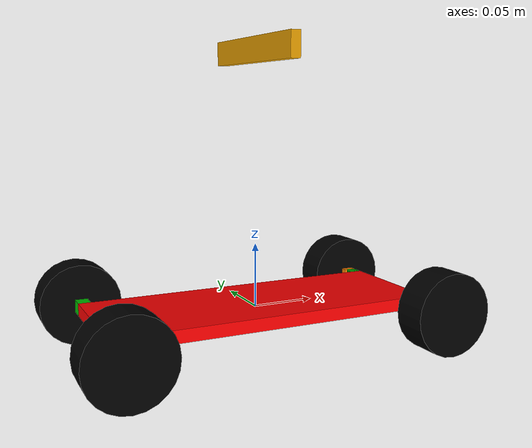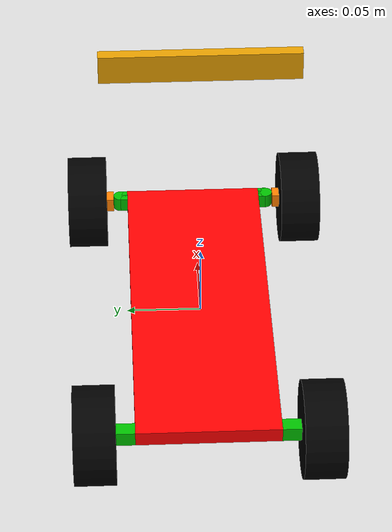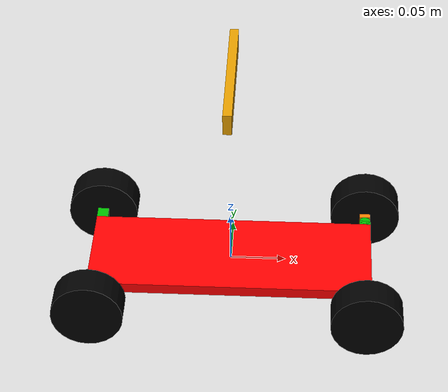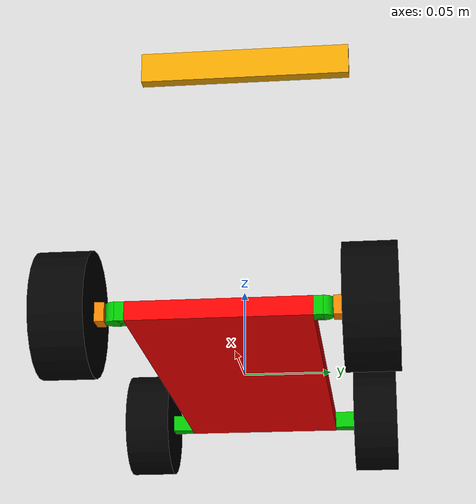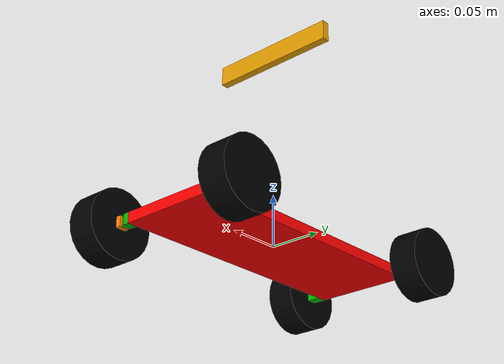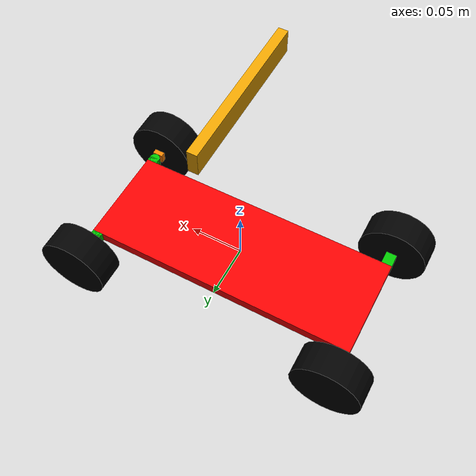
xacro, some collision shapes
<?xml version="1.0"?>

<robot xmlns:xacro="http://ros.org/wiki/xacro" name="simple_ackermann" >

	<xacro:property name="height" value="0.01" />
	<xacro:property name="wheelbase" value="0.26" />
	<xacro:property name="track" value="0.1525" />
	<xacro:property name="wheeldiameter" value="0.065" />
	<!--xacro:property name="wheelwidth" value="0.001" /-->
	<xacro:property name="wheelwidth" value="0.0275" />

	<xacro:property name="ackermann_x_offset" value="-0.095" />
	<xacro:property name="ackermann_z_offset" value="-0.03" />

	<xacro:include filename="$(find realsense_gazebo_plugin)/models/eugen/xacro/simple_ackermann_rear_wheel.xacro"/>
	<xacro:include filename="$(find realsense_gazebo_plugin)/models/eugen/xacro/simple_ackermann_front_wheel.xacro"/>
	<xacro:include filename="$(find realsense_gazebo_plugin)/models/eugen/xacro/simple_ackermann_plugin.xacro"/>
	<xacro:include filename="$(find realsense_gazebo_plugin)/models/realsense_camera_ros/realsense.xacro"/>

	<xacro:macro name="box_inertial" params="x y z mass">
		<inertial>
			<mass value="${mass}" />
			<origin xyz="0 0 0" />
			<inertia
				ixx="${0.0833333 * mass * (y*y + z*z)}" ixy="0.0" ixz="0.0"
				iyy="${0.0833333 * mass * (x*x + z*z)}" iyz="0.0"
				izz="${0.0833333 * mass * (x*x + y*y)}" />
		</inertial>
	</xacro:macro>

	<link name="base_link">
		<visual name="chassis_visual">
			<origin xyz="0.0 0.0 0.0" rpy="0.0 0.0 0.0"/>
			<geometry name="base_link_geomety">
				<box size="${wheelbase} ${track-wheelwidth-(3*height)} ${height}"/>
			</geometry>
			<material name="red">
				<color rgba="1.0 0.0 0.0 1.0"/>
			</material>
		</visual>
		<collision>
			<origin xyz="0.0 0.0 0.0" rpy="0.0 0.0 0.0"/>
			<geometry name="base_link_geomety">
				<box size="${wheelbase} ${track-wheelwidth-(3*height)} ${height}"/>
			</geometry>
		</collision>
		<xacro:box_inertial x="${wheelbase}" y="${track-wheelwidth-(3*height)}" z="${height}" mass="1.0" />
	</link>
	<gazebo reference="base_link">
		<material value="Gazebo/Red"/>
	</gazebo>

	<xacro:rear_wheel side="left" reflect="1.0" height="${height}" wheelbase="${wheelbase}" track="${track}" wheeldiameter="${wheeldiameter}" wheelwidth="${wheelwidth}"/>
	<xacro:rear_wheel side="right" reflect="-1.0" height="${height}" wheelbase="${wheelbase}" track="${track}" wheeldiameter="${wheeldiameter}" wheelwidth="${wheelwidth}"/>
	<xacro:front_wheel side="left" reflect="1.0" height="${height}" wheelbase="${wheelbase}" track="${track}" wheeldiameter="${wheeldiameter}" wheelwidth="${wheelwidth}"/>
	<xacro:front_wheel side="right" reflect="-1.0" height="${height}" wheelbase="${wheelbase}" track="${track}" wheeldiameter="${wheeldiameter}" wheelwidth="${wheelwidth}"/>

	<xacro:ackermanndrive_plugin/>

</robot>

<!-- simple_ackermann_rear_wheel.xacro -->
<robot xmlns:xacro="http://ros.org/wiki/xacro" name="simple_ackermann" >

	<xacro:macro name="default_inertial" params="mass">
		<inertial>
			<mass value="${mass}" />
			<inertia ixx="1.0" ixy="0.0" ixz="0.0" iyy="1.0" iyz="0.0" izz="1.0" />
		</inertial>
	</xacro:macro>

	<xacro:macro name="cylinder_inertial" params="radius length mass">
		<inertial>
			<mass value="${mass}" />
			<origin xyz="0 0 0" />
			<inertia
				ixx="${0.0833333 * mass * (3 * radius * radius + length * length)}" ixy="0.0" ixz="0.0"
				iyy="${0.0833333 * mass * (3 * radius * radius + length * length)}" iyz="0.0"
				izz="${0.5 * mass * radius * radius}" />
		</inertial>
	</xacro:macro>

	<xacro:macro name="cylinder_inertial_wheels" params="radius length mass">
		<inertial>
			<mass value="${mass}" />
			<origin xyz="0.0 ${reflect*wheelwidth/2} 0.0" rpy="${pi/2} 0.0 0.0"/>
			<inertia
				ixx="${0.0833333 * mass * (3 * radius * radius + length * length)}" ixy="0.0" ixz="0.0"
				iyy="${0.0833333 * mass * (3 * radius * radius + length * length)}" iyz="0.0"
				izz="${0.5 * mass * radius * radius}" />
		</inertial>
	</xacro:macro>

	<xacro:macro name="box_inertial" params="x y z mass">
		<inertial>
			<mass value="${mass}" />
			<origin xyz="0 0 0" />
			<inertia
				ixx="${0.0833333 * mass * (y*y + z*z)}" ixy="0.0" ixz="0.0"
				iyy="${0.0833333 * mass * (x*x + z*z)}" iyz="0.0"
				izz="${0.0833333 * mass * (x*x + y*y)}" />
		</inertial>
	</xacro:macro>

	<xacro:macro name="rear_wheel" params="side reflect height wheelbase track wheeldiameter wheelwidth">

		<joint name="base_link_to_${side}_rear_wheelmount" type="fixed">
			<origin xyz="${-(wheelbase/2-height/2)} ${reflect*(track-wheelwidth-3*height/2)/2} 0.0" rpy="0.0 0.0 0.0"/>
			<parent link="base_link"/>
			<child link="${side}_rear_wheelmount"/>
		</joint>

		<link name="${side}_rear_wheelmount">
			<visual>
				<origin xyz="0.0 0.0 0.0" rpy="0.0 0.0 0.0"/>
				<geometry name="wheelmount_geometry">
					<box size="${height} ${3*height/2} ${height}" />
				</geometry>
				<material name="green">
					<color rgba="0.0 0.75 0.0 1.0"/>
				</material>
			</visual>
			<collision>
				<origin xyz="0.0 0.0 0.0" rpy="0.0 0.0 0.0"/>
				<geometry name="wheelmount_geometry">
					<box size="${height} ${3*height/2} ${height}" />
				</geometry>
			</collision>
		<xacro:box_inertial x="${height}" y="${3*height/2}" z ="${height}" mass="0.015"/>
		</link>
		<gazebo reference="${side}_rear_wheelmount">
			<material value="Gazebo/Red"/>
		</gazebo>

		<joint name="${side}_rear_wheel_to_mount" type="continuous">
			<axis xyz="0.0 1.0 0.0"/>
			<origin xyz="0.0 ${reflect*height/2} 0.0" rpy="0.0 0.0 0.0"/>
			<parent link="${side}_rear_wheelmount"/>
			<child link="${side}_rear_wheel"/>
		</joint>

		<link name="${side}_rear_wheel">
			<visual>
				<origin xyz="0.0 ${reflect*wheelwidth/2} 0.0" rpy="${pi/2} 0.0 0.0"/>
				<geometry name="wheel_geom">
					<cylinder radius="${wheeldiameter/2}" length="${wheelwidth}" />
				</geometry>
				<material name="black">
					<color rgba="0.0 0.0 0.0 1.0"/>
				</material>
			</visual>
			<collision>
				<origin xyz="0.0 ${reflect*wheelwidth/2} 0.0" rpy="${pi/2} 0.0 0.0"/>
				<geometry name="wheel_geom">
					<cylinder radius="${wheeldiameter/2}" length="${wheelwidth}" />
				</geometry>
			</collision>
			<xacro:cylinder_inertial_wheels radius="${wheeldiameter/2}" length="${wheelwidth}" mass="0.01"/>
		</link>
		<gazebo reference="${side}_rear_wheel">
			<mu1>10.0</mu1>
			<mu2>10.0</mu2>
			<kp>1000000.0</kp>
			<kd>10.0</kd>
			<material value="Gazebo/Black"/>
		</gazebo>
	</xacro:macro>

</robot>

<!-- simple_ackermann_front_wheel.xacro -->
<robot xmlns:xacro="http://ros.org/wiki/xacro">

	<xacro:macro name="default_inertial" params="mass">
		<inertial>
			<mass value="${mass}" />
			<inertia ixx="0.001" ixy="0.0" ixz="0.0" iyy="0.001" iyz="0.0" izz="0.001" />
		</inertial>
	</xacro:macro>

	<xacro:macro name="cylinder_inertial" params="radius length mass">
		<inertial>
			<mass value="${mass}" />
			<origin xyz="0.0 0.0 0.0" rpy="0.0 0.0 0.0"/>
			<inertia
				ixx="${0.0833333 * mass * (3 * radius * radius + length * length)}" ixy="0.0" ixz="0.0"
				iyy="${0.0833333 * mass * (3 * radius * radius + length * length)}" iyz="0.0"
				izz="${0.5 * mass * radius * radius}" />
		</inertial>
	</xacro:macro>

	<xacro:macro name="cylinder_inertial_wheels" params="radius length mass">
		<inertial>
			<mass value="${mass}" />
			<origin xyz="0.0 ${reflect*wheelwidth/2} 0.0" rpy="${pi/2} 0.0 0.0"/>
			<inertia
				ixx="${0.0833333 * mass * (3 * radius * radius + length * length)}" ixy="0.0" ixz="0.0"
				iyy="${0.0833333 * mass * (3 * radius * radius + length * length)}" iyz="0.0"
				izz="${0.5 * mass * radius * radius}" />
		</inertial>
	</xacro:macro>

	<xacro:macro name="box_inertial" params="x y z mass">
		<inertial>
			<mass value="${mass}" />
			<origin xyz="0 0 0" />
			<inertia
				ixx="${0.0833333 * mass * (y*y + z*z)}" ixy="0.0" ixz="0.0"
				iyy="${0.0833333 * mass * (x*x + z*z)}" iyz="0.0"
				izz="${0.0833333 * mass * (x*x + y*y)}" />
		</inertial>
	</xacro:macro>

	<xacro:macro name="box_inertial_kingpin" params="x y z mass">
		<inertial>
			<mass value="${mass}" />
			<origin xyz="0.0 ${reflect*3*height/4} 0.0" rpy="0.0 0.0 0.0"/>
			<inertia
				ixx="${0.0833333 * mass * (y*y + z*z)}" ixy="0.0" ixz="0.0"
				iyy="${0.0833333 * mass * (x*x + z*z)}" iyz="0.0"
				izz="${0.0833333 * mass * (x*x + y*y)}" />
		</inertial>
	</xacro:macro>

	<xacro:macro name="cylinder_inertial_with_origin" params="radius length mass *origin">
		<inertial>
			<mass value="${mass}" />
			<xacro:insert_block name="origin" />
			<inertia
				ixx="${0.0833333 * mass * (3 * radius * radius + length * length)}" ixy="0.0" ixz="0.0"
				iyy="${0.0833333 * mass * (3 * radius * radius + length * length)}" iyz="0.0"
				izz="${0.5 * mass * radius * radius}" />
		</inertial>
	</xacro:macro>

	<xacro:macro name="box_inertial_with_origin" params="x y z mass *origin">
		<inertial>
			<mass value="${mass}" />
			<xacro:insert_block name="origin" />
			<inertia
				ixx="${0.0833333 * mass * (y*y + z*z)}" ixy="0.0" ixz="0.0"
				iyy="${0.0833333 * mass * (x*x + z*z)}" iyz="0.0"
				izz="${0.0833333 * mass * (x*x + y*y)}" />
		</inertial>
	</xacro:macro>

	<xacro:macro name="front_wheel" params="side reflect height wheelbase track wheeldiameter wheelwidth">

		<joint name="base_link_to_${side}_front_wheelmount_box" type="fixed">
			<origin xyz="${(wheelbase/2-height/2)} ${reflect*(track-wheelwidth-5*height/2)/2} 0.0" rpy="0.0 0.0 0.0"/>
			<parent link="base_link"/>
			<child link="${side}_front_wheelmount_box"/>
		</joint>

		<link name="${side}_front_wheelmount_box">
			<visual>
				<origin xyz="0.0 0.0 0.0" rpy="0.0 0.0 0.0"/>
				<geometry name="wheelmount_geometry">
					<box size="${height} ${height/2} ${height}" />
				</geometry>
				<material name="green">
					<color rgba="0.0 0.75 0.0 1.0"/>
				</material>
			</visual>
			<collision>
				<origin xyz="0.0 0.0 0.0" rpy="0.0 0.0 0.0"/>
				<geometry name="wheelmount_geometry">
					<box size="${height} ${height/2} ${height}" />
				</geometry>
			</collision>
			<xacro:box_inertial x="${height}" y="${height/2}" z="${height}" mass="0.005"/>
		</link>
		<gazebo reference="${side}_front_wheelmount_box">
			<material value="Gazebo/Red"/>
		</gazebo>

		<joint name="${side}_front_wheelmount_box_to_${side}_front_wheelmount_cylinder" type="fixed">
			<origin xyz="0.0 ${reflect*height/4} 0.0" rpy="0.0 0.0 0.0"/>
			<parent link="${side}_front_wheelmount_box"/>
			<child link="${side}_front_wheelmount_cylinder"/>
		</joint>

		<link name="${side}_front_wheelmount_cylinder">
			<visual>
				<origin xyz="0.0 0.0 0.0" rpy="0.0 0.0 0.0"/>
				<geometry name="wheelmount_geometry">
					<cylinder radius="${height/2}" length="${height}" />
				</geometry>
				<material name="green">
					<color rgba="0.0 0.75 0.0 1.0"/>
				</material>
			</visual>
			<collision>
				<origin xyz="0.0 0.0 0.0" rpy="0.0 0.0 0.0"/>
				<geometry name="wheelmount_geometry">
					<cylinder radius="${height/2}" length="${height}" />
				</geometry>
			</collision>
			<xacro:cylinder_inertial radius="${height/2}" length="${height}" mass="0.005"/>
		</link>
		<gazebo reference="${side}_front_wheelmount_cylinder">
			<material value="Gazebo/Red"/>
		</gazebo>

		<joint name="${side}_front_wheelmount_cylinder_to_${side}_kingpin" type="revolute">
		  	<axis xyz="0.0 0.0 1.0"/>
		  	<origin rpy="0.0 0.0 0.0" xyz="0.0 0.0 0.0"/>
			<parent link="${side}_front_wheelmount_cylinder"/>
			<child link="${side}_kingpin"/>
			<limit lower="-0.41" upper="0.41" effort="100" velocity="100"/>
			<joint_properties damping="1.0" friction="0.0"/>
		</joint>
		<gazebo reference="${side}_front_wheelmount_cylinder_to_${side}_kingpin">
		</gazebo>

		<link name="${side}_kingpin">
			<visual>
				<origin xyz="0.0 ${reflect*3*height/4} 0.0" rpy="0.0 0.0 0.0"/>
				<geometry name="kingpin_geometry">
					<box size="${height} ${height/2} ${height}" />
				</geometry>
				<material name="orange">
					<color rgba="1.0 0.5 0.0 1.0"/>
				</material>
			</visual>
			<collision>
				<origin xyz="0.0 ${reflect*3*height/4} 0.0" rpy="0.0 0.0 0.0"/>
				<geometry name="kingpin_geometry">
					<box size="${height} ${height/2} ${height}" />
				</geometry>
			</collision>
			<xacro:box_inertial_kingpin x="${height}" y="${height/2}" z="${height}" mass="0.005"/>
		</link>
		<gazebo reference="${side}_kingpin">
			<material value="Gazebo/Orange"/>
		</gazebo>

		<joint name="${side}_kingpin_to_${side}_front_wheel" type="continuous">
			<axis xyz="0.0 1.0 0.0"/>
			<origin xyz="0.0 ${reflect*height} 0.0" rpy="0.0 0.0 0.0"/>
			<parent link="${side}_kingpin"/>
			<child link="${side}_front_wheel"/>
		</joint>

		<link name="${side}_front_wheel">
			<visual>
				<origin xyz="0.0 ${reflect*wheelwidth/2} 0.0" rpy="${pi/2} 0.0 0.0"/>
				<geometry name="wheel_geom">
					<cylinder radius="${wheeldiameter/2}" length="${wheelwidth}" />
				</geometry>
				<material name="black">
					<color rgba="0.0 0.0 0.0 1.0"/>
				</material>
			</visual>
			<collision>
				<origin xyz="0.0 ${reflect*wheelwidth/2} 0.0" rpy="${pi/2} 0.0 0.0"/>
				<geometry name="wheel_geom">
					<cylinder radius="${wheeldiameter/2}" length="${wheelwidth}" />
				</geometry>
			</collision>
			<xacro:cylinder_inertial_wheels radius="${wheeldiameter/2}" length="${wheelwidth}" mass="0.01"/>
		</link>
		<gazebo reference="${side}_front_wheel">
			<mu1>10.0</mu1>		<!-- friction coeffciant 1 -->
			<mu2>10.0</mu2>		<!-- friction coeffciant 2 -->
			<kp>100000.0</kp>	<!-- contact stiffness 	-->
			<kd>10.0</kd>		<!-- cantact damping 	-->
			<material value="Gazebo/Black"/>
		</gazebo>

	</xacro:macro>

</robot>

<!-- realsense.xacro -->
<robot name="realsense_camera" xmlns:xacro="http://ros.org/wiki/xacro">

    <xacro:property name="camera_base_x_" value="0.0" />
	<xacro:property name="camera_base_y_" value="0.0" />
	<xacro:property name="camera_base_z_" value="0.2" />

  <joint name="base_link_to_camera_link" type="fixed">
    <origin xyz="${camera_base_x_} ${camera_base_y_} ${camera_base_z_}" rpy="0.0 0.0 0.0"/>
    <parent link="base_link"/>
    <child link="camera_link"/>
  </joint>

  <link name="camera_link">
    <pose>0 0 0.015 0 0 0</pose>
    <inertial>
      <mass value="1"/>
      <inertia ixx="0.0" iyy="0.0" izz="0.0" ixy="0" ixz="0" iyz="0" />
    </inertial>
    <visual name="visual">
      <geometry>
        <mesh filename="model://realsense_camera_ros/meshes/realsense.dae"/>
      </geometry>
    </visual>
    <collision name='collision'>
      <geometry>
        <box size="0.0078 0.130 0.0192"/>
      </geometry>
    </collision>
  </link>
  <gazebo>
    <plugin name="ackermanndrive_plugin" filename="librealsense_gazebo_plugin.so">
      <camera_base_x>${camera_base_x_}</camera_base_x>
      <camera_base_y>${camera_base_y_}</camera_base_y>
      <camera_base_z>${camera_base_z_}</camera_base_z>
      <ackermann_x_offset_plugin>${ackermann_x_offset}</ackermann_x_offset_plugin>
      <ackermann_z_offset_plugin>${ackermann_z_offset}</ackermann_z_offset_plugin>
      <robotNamespace>ackermann</robotNamespace>
      <FixedFrame>map</FixedFrame>
    </plugin>
  </gazebo>
  <gazebo reference="camera_link">
      <sensor name="color" type="camera">
        <pose frame="">0 -0.046 0.004 0 0 0</pose>
        <always_on>1</always_on>
        <update_rate>60</update_rate>
        <visualize>1</visualize>
        <camera name="rgb_camera">
          <horizontal_fov>1.047</horizontal_fov>
          <image>
            <width>640</width>
            <height>480</height>
            <format>RGB_INT8</format>
          </image>
          <clip>
            <near>0.1</near>
            <far>100</far>
          </clip>
          <noise>
            <type>gaussian</type>
            <mean>0.0</mean>
            <stddev>0.007</stddev>
          </noise>
        </camera>
      </sensor>
      <sensor name="ired1" type="camera">
        <pose frame="">0 -0.06 0.004 0 0 0</pose>
        <always_on>1</always_on>
        <update_rate>60</update_rate>
        <visualize>0</visualize>
        <camera name="ir_1_camera">
          <horizontal_fov>1.047</horizontal_fov>
          <image>
            <width>640</width>
            <height>480</height>
            <format>L_INT8</format>
          </image>
          <clip>
            <near>0.1</near>
            <far>100</far>
          </clip>
          <noise>
            <type>gaussian</type>
            <mean>0.0</mean>
            <stddev>0.007</stddev>
          </noise>
        </camera>
      </sensor>
      <sensor name="ired2" type="camera">
        <pose frame="">0 0.01 0.004 0 0 0</pose>
        <always_on>1</always_on>
        <update_rate>60</update_rate>
        <visualize>0</visualize>
        <camera name="ir_2_camera">
          <horizontal_fov>1.047</horizontal_fov>
          <image>
            <width>640</width>
            <height>480</height>
            <format>L_INT8</format>
          </image>
          <clip>
            <near>0.1</near>
            <far>100</far>
          </clip>
          <noise>
            <type>gaussian</type>
            <mean>0.0</mean>
            <stddev>0.007</stddev>
          </noise>
        </camera>
      </sensor>
      <sensor name="depth" type="depth">
        <pose frame="">0 -0.03 0.004 0 0 0</pose>
        <always_on>1</always_on>
        <update_rate>60</update_rate>
        <visualize>0</visualize>
        <camera name="depth_camera">
          <horizontal_fov>1.047</horizontal_fov>
          <image>
            <width>640</width>
            <height>480</height>
          </image>
          <clip>
            <near>0.1</near>
            <far>100</far>
          </clip>
          <noise>
            <type>gaussian</type>
            <mean>0.0</mean>
            <stddev>0.007</stddev>
          </noise>
        </camera>
      </sensor>
    </gazebo>
</robot>
